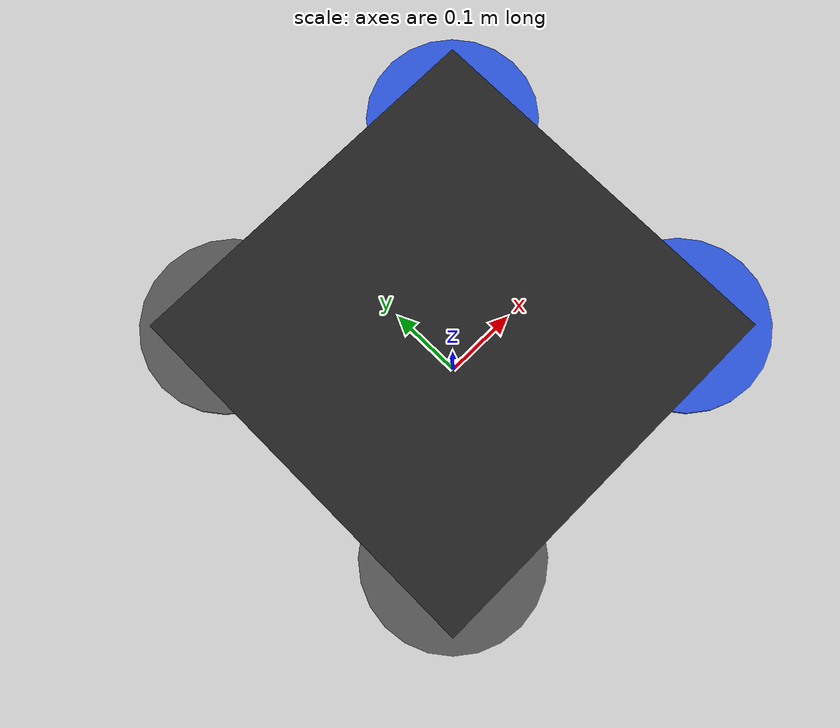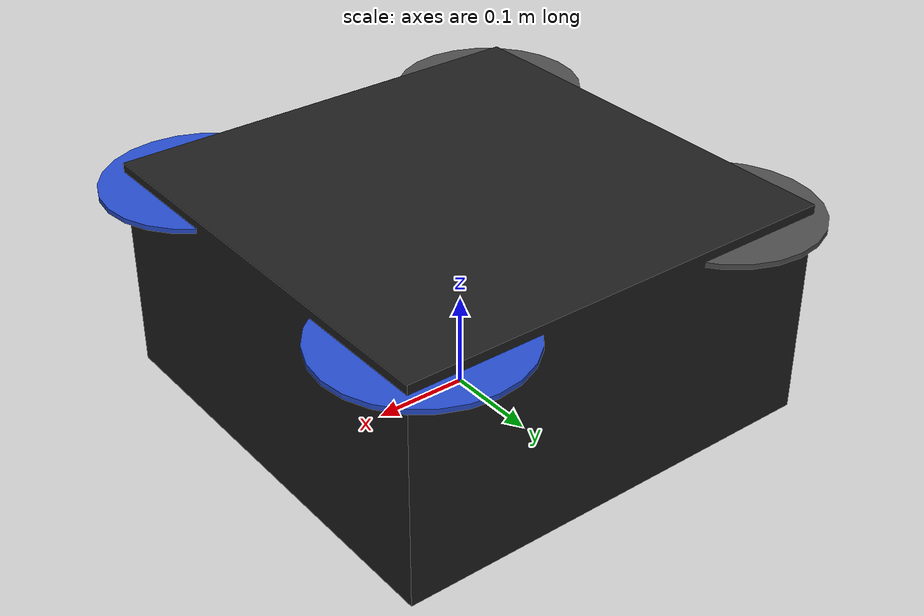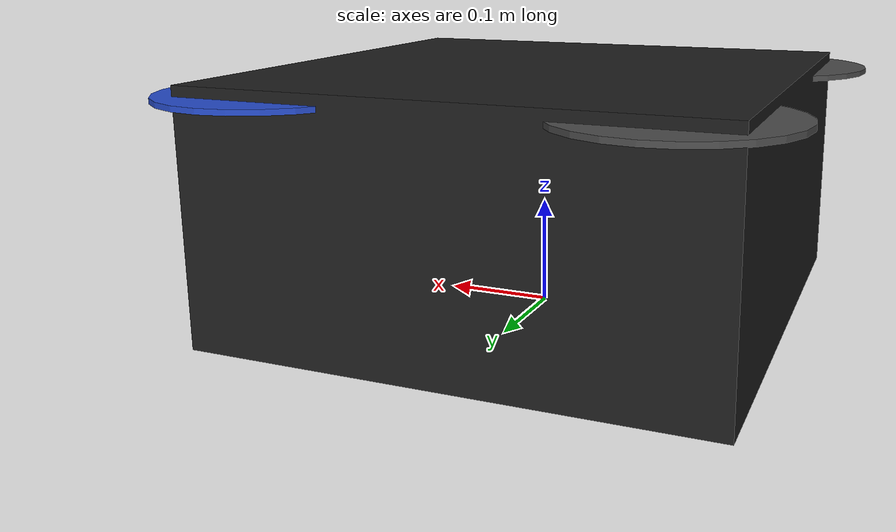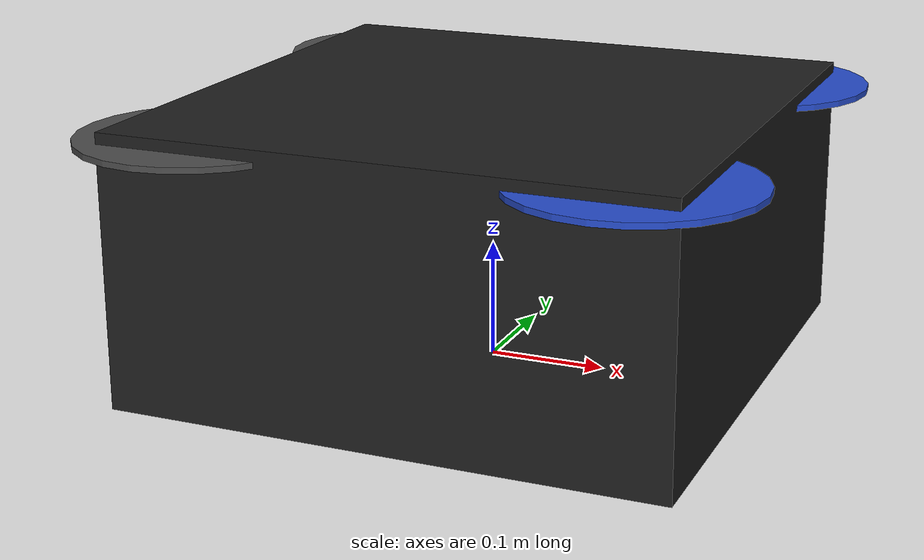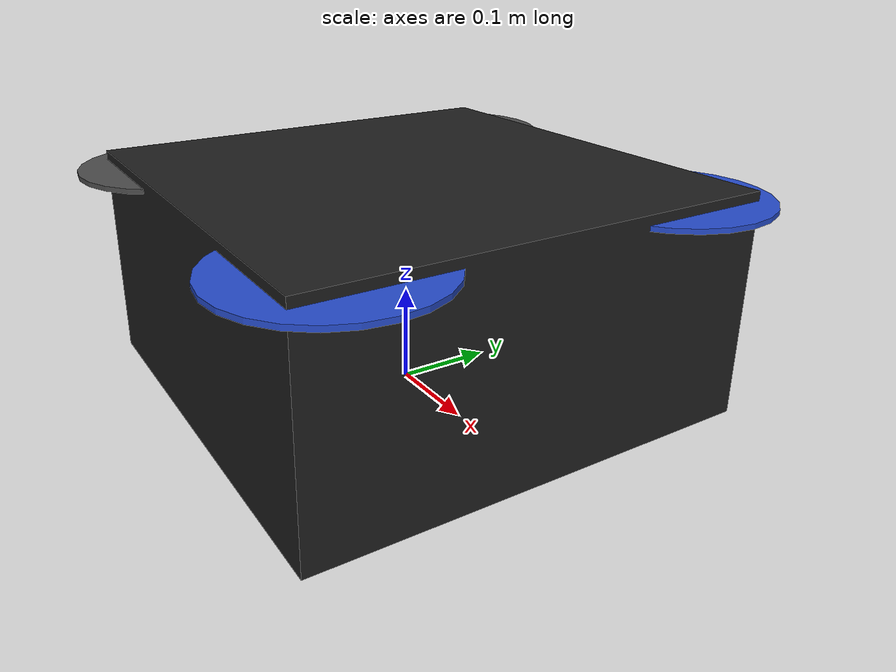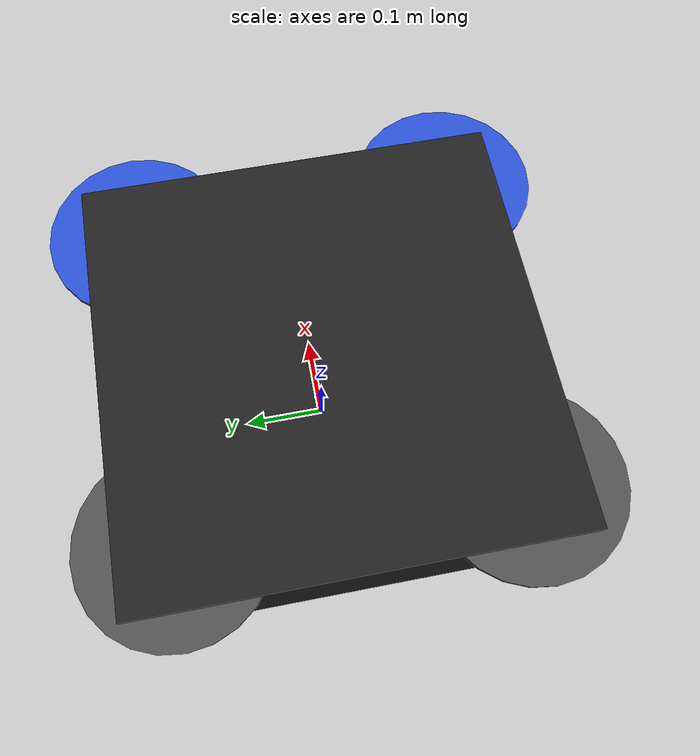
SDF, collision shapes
<?xml version='1.0'?>
<sdf version='1.6'>
  <model name='my_drone'>
    <pose>0 0 0.194923 0 0 0</pose>
    <link name='base_link'>
      <velocity_decay>
        <linear>0.0</linear>
        <angular>0.0</angular>
      </velocity_decay>
      <inertial>
        <pose>0 0 0 0 0 0</pose>
        <mass>1.22</mass>
        <inertia>
          <ixx>0.00008</ixx>
          <ixy>0</ixy>
          <ixz>0</ixz>
          <iyy>0.00015</iyy>
          <iyz>0</iyz>
          <izz>0.00017</izz>
        </inertia>
      </inertial>
      <collision name='base_link_collision'>
        <pose>0 0 -0.08 0 0 0</pose>
        <geometry>
          <box>
            <size>0.47 0.47 0.23</size>
          </box>
        </geometry>
        <surface>
          <contact>
            <ode>
              <max_vel>100.0</max_vel>
              <min_depth>0.001</min_depth>
            </ode>
          </contact>
          <friction>
            <ode>
              <mu>1.0</mu>
              <mu2>1.0</mu2>
            </ode>
          </friction>
        </surface>
      </collision>
      <visual name='base_link_visual_0'> <!-- blocco grande in mezzo   tutte le seguenti pose sono fatte per ottenere 50 cm di diagonale e perpendicolarità tra le braccia del drone-->
        <pose>0 0 -0.005 0 1.570795 0</pose>
        <geometry>
          <box>
            <size>0.02 0.1 0.1</size>
          </box>
        </geometry>
        <material>
          <script>
            <name>Gazebo/FlatBlack</name>
            <uri>file://media/materials/scripts/gazebo.material</uri>
          </script>
        </material>
      </visual>
      <visual name='base_link_visual_1'>  <!-- blocco grande sotto-->
        <pose>0 0 -0.03 0 1.570795 0</pose>
        <geometry>
          <box>
            <size>0.04 0.1 0.1</size>
          </box>
        </geometry>
        <material>
          <script>
            <name>Gazebo/FlatBlack</name>
            <uri>file://media/materials/scripts/gazebo.material</uri>
          </script>
        </material>
      </visual>
      <visual name='base_link_visual_2'> <!-- blocco piccolo sopra-->
        <pose>0 0 -0.002 0 1.570795 0</pose>
        <geometry>
          <box>
            <size>0.07 0.07 0.08</size>
          </box>
        </geometry>
        <material>
          <script>
            <name>Gazebo/DarkGrey</name>
          </script>
        </material>
      </visual>
      <visual name='base_link_visual_3'>  <!-- braccia-->
        <pose>0 0 -0.005 0.7853975 1.570795 0</pose>
        <geometry>
          <box>
            <size>0.02 0.03 0.5</size>
          </box>
        </geometry>
        <material>
          <script>
            <name>Gazebo/FlatBlack</name>
            <uri>file://media/materials/scripts/gazebo.material</uri>
          </script>
        </material>
      </visual>
      <visual name='base_link_visual_4'>   <!-- braccia-->
        <pose>0 0 -0.005 -0.7853975 1.570795 0</pose>
        <geometry>
          <box>
            <size>0.02 0.03 0.5</size>
          </box>
        </geometry>
        <material>
          <script>
            <name>Gazebo/FlatBlack</name>
            <uri>file://media/materials/scripts/gazebo.material</uri>
          </script>
        </material>
      </visual>
      <visual name='base_link_visual_5'>   <!-- cilindri in fondo alle braccia-->
        <pose>0.176776695 0.176776695 -0.005 0 0 0</pose>
        <geometry>
          <cylinder>
            <radius>0.015</radius>
            <length>0.02</length>
          </cylinder>
        </geometry>
        <material>
          <script>
            <name>Gazebo/FlatBlack</name>
            <uri>file://media/materials/scripts/gazebo.material</uri>
          </script>
        </material>
      </visual>
      <visual name='base_link_visual_6'>   <!-- cilindri in fondo alle braccia-->
        <pose>-0.176776695 0.176776695 -0.005 0 0 0</pose>
        <geometry>
          <cylinder>
            <radius>0.015</radius>
            <length>0.02</length>
          </cylinder>
        </geometry>
        <material>
          <script>
            <name>Gazebo/FlatBlack</name>
            <uri>file://media/materials/scripts/gazebo.material</uri>
          </script>
        </material>
      </visual>
      <visual name='base_link_visual_7'>   <!-- cilindri in fondo alle braccia-->
        <pose>0.176776695 -0.176776695 -0.005 0 0 0</pose>
        <geometry>
          <cylinder>
            <radius>0.015</radius>
            <length>0.02</length>
          </cylinder>
        </geometry>
        <material>
          <script>
            <name>Gazebo/FlatBlack</name>
            <uri>file://media/materials/scripts/gazebo.material</uri>
          </script>
        </material>
      </visual>
      <visual name='base_link_visual_8'>   <!-- cilindri in fondo alle braccia-->
        <pose>-0.176776695 -0.176776695 -0.005 0 0 0</pose>
        <geometry>
          <cylinder>
            <radius>0.015</radius>
            <length>0.02</length>
          </cylinder>
        </geometry>
        <material>
          <script>
            <name>Gazebo/FlatBlack</name>
            <uri>file://media/materials/scripts/gazebo.material</uri>
          </script>
        </material>
      </visual>

      <visual name='front_left_leg_visual_0'>
        <pose>0.176776695 0.176776695 -0.004 0 0 0</pose>
        <geometry>
          <cylinder>
            <radius>0.005</radius>
            <length>0.045</length>
          </cylinder>
        </geometry>
        <material>
          <script>
            <name>Gazebo/FlatBlack</name>
            <uri>file://media/materials/scripts/gazebo.material</uri>
          </script>
        </material>
      </visual>
      <visual name='front_right_leg_visual_0'>
        <pose>0.176776695 -0.176776695 -0.004 0 0 0</pose>
        <geometry>
          <cylinder>
            <radius>0.005</radius>
            <length>0.045</length>
          </cylinder>
        </geometry>
        <material>
          <script>
            <name>Gazebo/FlatBlack</name>
            <uri>file://media/materials/scripts/gazebo.material</uri>
          </script>
        </material>
      </visual>
      <visual name='rear_left_leg_visual_0'>
        <pose>-0.176776695 0.176776695 -0.004 0 0 0</pose>
        <geometry>
          <cylinder>
            <radius>0.005</radius>
            <length>0.045</length>
          </cylinder>
        </geometry>
        <material>
          <script>
            <name>Gazebo/FlatBlack</name>
            <uri>file://media/materials/scripts/gazebo.material</uri>
          </script>
        </material>
      </visual>
      <visual name='rear_right_leg_visual_0'>
        <pose>-0.176776695 -0.176776695 -0.004 0 0 0</pose>
        <geometry>
          <cylinder>
            <radius>0.005</radius>
            <length>0.045</length>
          </cylinder>
        </geometry>
        <material>
          <script>
            <name>Gazebo/FlatBlack</name>
            <uri>file://media/materials/scripts/gazebo.material</uri>
          </script>
        </material>
      </visual>
      <visual name='front_left_leg_visual_1'>
        <pose>0.176776695 0.176776695 -0.11 0 0 0</pose>
        <geometry>
          <cylinder>
            <radius>0.005</radius>
            <length>0.17</length>
          </cylinder>
        </geometry>
        <material>
          <script>
            <name>Gazebo/FlatBlack</name>
            <uri>file://media/materials/scripts/gazebo.material</uri>
          </script>
        </material>
      </visual>
      <visual name='front_right_leg_visual_1'>
        <pose>0.176776695 -0.176776695 -0.11 0 0 0</pose>
        <geometry>
          <cylinder>
            <radius>0.005</radius>
            <length>0.17</length>
          </cylinder>
        </geometry>
        <material>
          <script>
            <name>Gazebo/FlatBlack</name>
            <uri>file://media/materials/scripts/gazebo.material</uri>
          </script>
        </material>
      </visual>
      <visual name='rear_left_leg_visual_1'>
        <pose>-0.176776695 0.176776695 -0.11 0 0 0</pose>
        <geometry>
          <cylinder>
            <radius>0.005</radius>
            <length>0.17</length>
          </cylinder>
        </geometry>
        <material>
          <script>
            <name>Gazebo/FlatBlack</name>
            <uri>file://media/materials/scripts/gazebo.material</uri>
          </script>
        </material>
      </visual>
      <visual name='rear_right_leg_visual_1'>
        <pose>-0.176776695 -0.176776695 -0.11 0 0 0</pose>
        <geometry>
          <cylinder>
            <radius>0.005</radius>
            <length>0.17</length>
          </cylinder>
        </geometry>
        <material>
          <script>
            <name>Gazebo/FlatBlack</name>
            <uri>file://media/materials/scripts/gazebo.material</uri>
          </script>
        </material>
      </visual>
    </link>
    <link name='iris/ground_truth/odometry_sensorgt_link'>
      <pose>0 0 0 0 -0 0</pose>
    </link>
    <joint name='iris/ground_truth/odometry_sensorgt_joint' type='revolute'>
      <child>iris/ground_truth/odometry_sensorgt_link</child>
      <parent>base_link</parent>
      <axis>
        <xyz>0 0 1</xyz>
        <limit>
          <lower>0</lower>
          <upper>0</upper>
          <effort>0</effort>
          <velocity>0</velocity>
        </limit>
        <dynamics>
          <damping>1.0</damping>
        </dynamics>
        <use_parent_model_frame>1</use_parent_model_frame>
      </axis>
      <physics>
        <ode>
          <implicit_spring_damper>1</implicit_spring_damper>
        </ode>
      </physics>
    </joint>
    <link name='iris/imu_link'>
      <sensor name="imu_sensor" type="imu">
        <pose>0 0 0 3.141593 0 0</pose>
        <always_on>1</always_on>
        <update_rate>1000.0</update_rate>
      </sensor>
    </link>
    <joint name='iris/imu_joint' type='revolute'>
      <child>iris/imu_link</child>
      <parent>base_link</parent>
      <axis>
        <xyz>0 0 1</xyz>
        <limit>
          <lower>0</lower>
          <upper>0</upper>
          <effort>0</effort>
          <velocity>0</velocity>
        </limit>
        <dynamics>
          <damping>1.0</damping>
        </dynamics>
        <use_parent_model_frame>1</use_parent_model_frame>
      </axis>
      <physics>
        <ode>
          <implicit_spring_damper>1</implicit_spring_damper>
        </ode>
      </physics>
    </joint>
    <link name='rotor_0'>
      <pose>0.181776695 -0.176776695 0.023 0 -0 0</pose>
      <collision name='rotor_0_collision'>
        <pose>0 0 0 0 -0 0</pose>
        <geometry>
          <cylinder>
            <length>0.005</length>
            <radius>0.1</radius>
          </cylinder>
        </geometry>
        <surface>
          <contact>
            <ode/>
          </contact>
          <friction>
            <ode/>
          </friction>
        </surface>
      </collision>
      <visual name='rotor_0_visual'>
        <pose>0 0 0 0 -0 0</pose>
        <geometry>
          <mesh>
            <scale>0.75 0.75 1</scale>
            <uri>model://my_drone_with_standoffs/meshes/iris_prop_ccw.dae</uri>
          </mesh>
        </geometry>
        <material>
          <script>
            <name>Gazebo/Blue</name>
            <uri>__default__</uri>
          </script>
        </material>
      </visual>
      <gravity>1</gravity>
      <velocity_decay/>
      <self_collide>0</self_collide>
    </link>
    <joint name='rotor_0_joint' type='revolute'>
      <child>rotor_0</child>
      <parent>base_link</parent>
      <axis>
        <xyz>0 0 1</xyz>
        <limit>
          <lower>-1e+16</lower>
          <upper>1e+16</upper>
        </limit>
        <dynamics>
          <damping>0.004</damping>
        </dynamics>
        <use_parent_model_frame>1</use_parent_model_frame>
      </axis>
      <physics>
        <ode>
          <implicit_spring_damper>1</implicit_spring_damper>
        </ode>
      </physics>
    </joint>
    <link name='rotor_1'>
      <pose>-0.171776695 0.176776695 0.023 0 -0 0</pose>
      <collision name='rotor_1_collision'>
        <pose>0 0 0 0 -0 0</pose>
        <geometry>
          <cylinder>
            <length>0.005</length>
            <radius>0.1</radius>
          </cylinder>
        </geometry>
        <surface>
          <contact>
            <ode/>
          </contact>
          <friction>
            <ode/>
          </friction>
        </surface>
      </collision>
      <visual name='rotor_1_visual'>
        <pose>0 0 0 0 -0 0</pose>
        <geometry>
          <mesh>
            <scale>0.75 0.75 1</scale>
            <uri>model://my_drone_with_standoffs/meshes/iris_prop_ccw.dae</uri>
          </mesh>
        </geometry>
        <material>
          <script>
            <name>Gazebo/DarkGrey</name>
            <uri>__default__</uri>
          </script>
        </material>
      </visual>
      <gravity>1</gravity>
      <velocity_decay/>
      <self_collide>0</self_collide>
    </link>
    <joint name='rotor_1_joint' type='revolute'>
      <child>rotor_1</child>
      <parent>base_link</parent>
      <axis>
        <xyz>0 0 1</xyz>
        <limit>
          <lower>-1e+16</lower>
          <upper>1e+16</upper>
        </limit>
        <dynamics>
          <damping>0.004</damping>
        </dynamics>
        <use_parent_model_frame>1</use_parent_model_frame>
      </axis>
      <physics>
        <ode>
          <implicit_spring_damper>1</implicit_spring_damper>
        </ode>
      </physics>
    </joint>
    <link name='rotor_2'>
      <pose>0.176776695 0.176776695 0.023 0 -0 0</pose>
      <collision name='rotor_2_collision'>
        <pose>0 0 0 0 -0 0</pose>
        <geometry>
          <cylinder>
            <length>0.005</length>
            <radius>0.1</radius>
          </cylinder>
        </geometry>
        <surface>
          <contact>
            <ode/>
          </contact>
          <friction>
            <ode/>
          </friction>
        </surface>
      </collision>
      <visual name='rotor_2_visual'>
        <pose>0 0 0 0 -0 0</pose>
        <geometry>
          <mesh>
            <scale>0.75 0.75 1</scale>
            <uri>model://my_drone_with_standoffs/meshes/iris_prop_cw.dae</uri>
          </mesh>
        </geometry>
        <material>
          <script>
            <name>Gazebo/Blue</name>
            <uri>__default__</uri>
          </script>
        </material>
      </visual>
      <gravity>1</gravity>
      <velocity_decay/>
      <self_collide>0</self_collide>
    </link>
    <joint name='rotor_2_joint' type='revolute'>
      <child>rotor_2</child>
      <parent>base_link</parent>
      <axis>
        <xyz>0 0 1</xyz>
        <limit>
          <lower>-1e+16</lower>
          <upper>1e+16</upper>
        </limit>
        <dynamics>
          <damping>0.004</damping>
        </dynamics>
        <use_parent_model_frame>1</use_parent_model_frame>
      </axis>
      <physics>
        <ode>
          <implicit_spring_damper>1</implicit_spring_damper>
        </ode>
      </physics>
    </joint>
    <link name='rotor_3'>
      <pose>-0.176776695 -0.176776695 0.023 0 -0 0</pose>
      <collision name='rotor_3_collision'>
        <pose>0 0 0 0 -0 0</pose>
        <geometry>
          <cylinder>
            <length>0.005</length>
            <radius>0.1</radius>
          </cylinder>
        </geometry>
        <surface>
          <contact>
            <ode/>
          </contact>
          <friction>
            <ode/>
          </friction>
        </surface>
      </collision>
      <visual name='rotor_3_visual'>
        <pose>0 0 0 0 -0 0</pose>
        <geometry>
          <mesh>
            <scale>0.75 0.75 1</scale>
            <uri>model://my_drone_with_standoffs/meshes/iris_prop_cw.dae</uri>
          </mesh>
        </geometry>
        <material>
          <script>
            <name>Gazebo/DarkGrey</name>
            <uri>__default__</uri>
          </script>
        </material>
      </visual>
      <gravity>1</gravity>
      <velocity_decay/>
      <self_collide>0</self_collide>
    </link>
    <joint name='rotor_3_joint' type='revolute'>
      <child>rotor_3</child>
      <parent>base_link</parent>
      <axis>
        <xyz>0 0 1</xyz>
        <limit>
          <lower>-1e+16</lower>
          <upper>1e+16</upper>
        </limit>
        <dynamics>
          <damping>0.004</damping>
        </dynamics>
        <use_parent_model_frame>1</use_parent_model_frame>
      </axis>
      <physics>
        <ode>
          <implicit_spring_damper>1</implicit_spring_damper>
        </ode>
      </physics>
    </joint>
    <static>0</static>
  </model>
</sdf>
